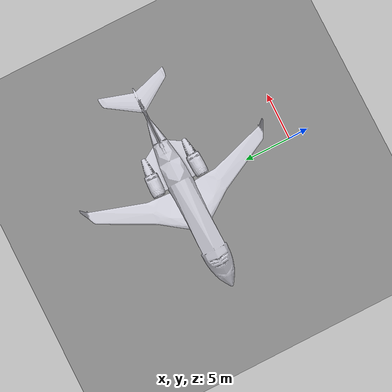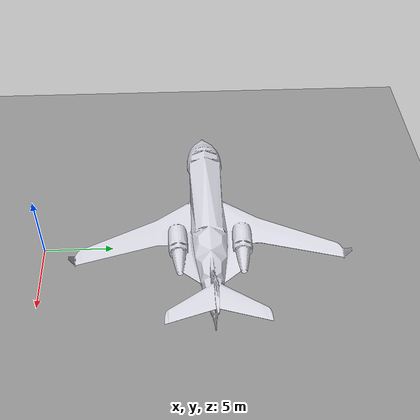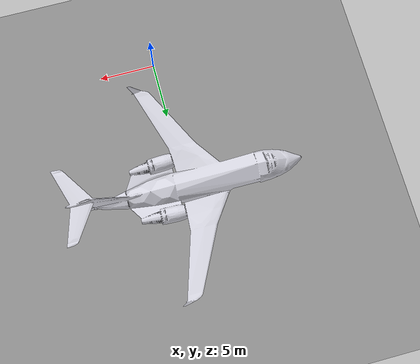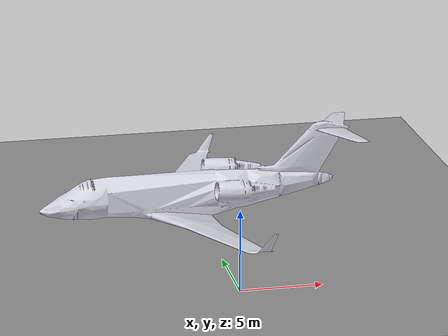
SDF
<?xml version="1.0"?>
<sdf version="1.10">
  <world name="burke_empty">
    <!-- Simulation assumption: fixed Earth gravity and a deterministic 1 kHz
         physics update make the empty-world startup repeatable. -->
    <plugin filename="gz-sim-physics-system"
            name="gz::sim::systems::Physics"/>
    <plugin filename="gz-sim-user-commands-system"
            name="gz::sim::systems::UserCommands"/>
    <plugin filename="gz-sim-scene-broadcaster-system"
            name="gz::sim::systems::SceneBroadcaster"/>
    <plugin filename="gz-sim-sensors-system"
            name="gz::sim::systems::Sensors">
      <render_engine>ogre</render_engine>
    </plugin>
    <gravity>0 0 -9.81</gravity>
    <magnetic_field>6.0e-6 2.3e-5 -4.2e-5</magnetic_field>
    <physics name="burke_physics" type="ode">
      <max_step_size>0.001</max_step_size>
      <real_time_factor>1.0</real_time_factor>
      <real_time_update_rate>1000</real_time_update_rate>
    </physics>

    <scene>
      <ambient>0.4 0.4 0.4 1</ambient>
      <background>0.7 0.8 0.9 1</background>
      <shadows>true</shadows>
    </scene>

    <!-- Initial GUI view: frame both the robot at the origin and the aircraft
         centred around world Y=12 m. -->
    <gui fullscreen="0">
      <camera name="user_camera">
        <pose>18 -18 14 0 0.38 2.18</pose>
      </camera>
    </gui>

    <model name="ground_plane">
      <static>true</static>
      <link name="link">
        <collision name="collision">
          <geometry>
            <plane>
              <normal>0 0 1</normal>
              <size>100 100</size>
            </plane>
          </geometry>
        </collision>
        <visual name="visual">
          <geometry>
            <plane>
              <normal>0 0 1</normal>
              <size>100 100</size>
            </plane>
          </geometry>
          <material>
            <ambient>0.35 0.35 0.35 1</ambient>
            <diffuse>0.55 0.55 0.55 1</diffuse>
            <specular>0.05 0.05 0.05 1</specular>
          </material>
        </visual>
      </link>
    </model>

    <model name="challenger_reduced">
      <static>true</static>
      <pose>-13.994906 12 -0.5 1.57079632679 0 1.57079632679</pose>
      <link name="aircraft_link">
        <collision name="aircraft_collision">
          <geometry>
            <mesh>
              <uri>model://burke_description/cad/stl/challenger_collision.stl</uri>
              <scale>0.001 0.001 0.001</scale>
            </mesh>
          </geometry>
        </collision>
        <visual name="aircraft_visual">
          <geometry>
            <mesh>
              <uri>model://burke_description/cad/stl/challenger_reduced.stl</uri>
            </mesh>
          </geometry>
          <material>
            <ambient>0.75 0.75 0.78 1</ambient>
            <diffuse>0.82 0.82 0.86 1</diffuse>
            <specular>0.25 0.25 0.25 1</specular>
          </material>
        </visual>
      </link>
    </model>

    <light name="sun" type="directional">
      <cast_shadows>true</cast_shadows>
      <pose>-6 -4 10 0.35 -0.45 0.25</pose>
      <diffuse>0.9 0.9 0.9 1</diffuse>
      <specular>0.2 0.2 0.2 1</specular>
      <direction>-0.4 0.3 -1</direction>
    </light>
  </world>
</sdf>
